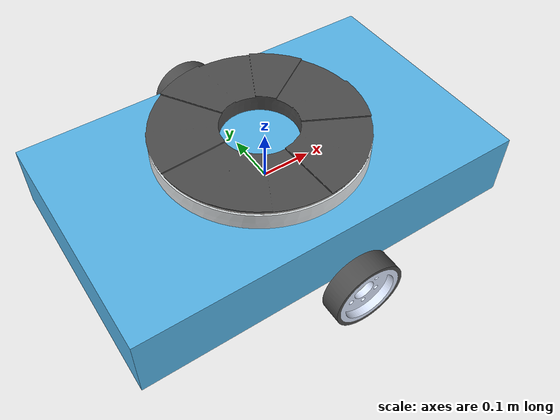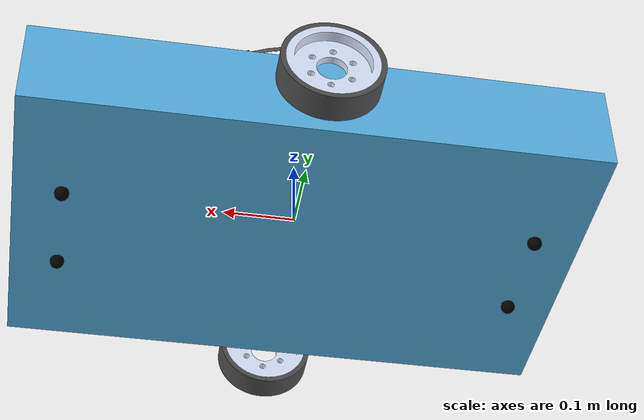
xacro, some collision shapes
<?xml version="1.0" ?>
<robot name="rocket" xmlns:xacro="http://ros.org/wiki/xacro">

  <!--=========================== CONTROL ===========================-->
  <xacro:include filename="rocket_control.xacro" />

  <!--=========================== PLUGINS ===========================-->

  <!-- ****************** ROBOT CONSTANTS *******************************  -->
  <!-- Define the size of the robot's main base_link in meters -->
  <xacro:property name="base_width" value="0.47"/>
  <xacro:property name="base_length" value="0.77"/>
  <xacro:property name="base_height" value="0.13"/>

  <!-- Define the shape of the robot's two wheels in meters -->
  <xacro:property name="wheel_radius" value="0.0675"/>
  <xacro:property name="wheel_width" value="0.04"/>

  <!-- Define the shape of the robot's tray in meters -->
  <xacro:property name="tray_radius" value="0.2"/>
  <xacro:property name="tray_width" value="0.041"/>

  <!-- Define the shape of the robot's four caster wheels in meters -->
  <xacro:property name="caster_wheel_radius" value="0.01"/>

  <!-- Colors -->
  <material name="black">
      <color rgba="0.0 0.0 0.0 1.0"/>
  </material>

  <!-- ********************** ROBOT BASE *********************************  -->
  <link name="base_footprint">
    </link>

    <gazebo reference="base_link">
      <mu1 value="0.3" />
      <mu2 value="0.3" />
      <kp value="1000000.0" />
      <kd value="100" />
      <fdir1 value="0 0 0" />
    </gazebo>

    <joint name="base_joint" type="fixed">
      <parent link="base_link"/>
      <child link="base_footprint" />
      <origin xyz="0.0 0.0 -0.0793" rpy="0 0 3.14"/>
    </joint>

    <link name="base_link">
      <visual>
        <origin xyz="0  0  0" rpy="0 0 0"/>
        <geometry>
          <mesh filename="file:///$(find rocket)/meshes/EST_estrutura_m3.dae" />
        </geometry>
      </visual>

      <collision>
          <origin rpy="0  0  0" xyz="0  0  0.01" />
          <geometry>
              <box size="${base_length} ${base_width} ${base_height}"/>
          </geometry>
      </collision>

      <inertial>
          <origin xyz="0  0  0" rpy="0  1.57  0"/>
          <mass value="2.4"/>
          <inertia ixx="0.12196" ixy="0.0" ixz="0.0"
                iyy="0.04756" iyz="0.0"
                izz="0.16276" />
      </inertial>

    </link>

  <!-- *********************** DRIVE WHEELS ******************************  -->
    <gazebo reference="left_wheel">
      <mu1>1.0</mu1>
      <mu2>1.0</mu2>
      <kp>1000000.0</kp>
      <kd>100.0</kd>
    </gazebo>

    <link name="left_wheel">
      <visual name="left_wheel_visual">
        <origin xyz="0 0 0" rpy="0 0 0"/>
        <geometry>
            <mesh filename="file:///$(find rocket)/meshes/M_rodatrativa.dae" scale="1 1 1"/>
        </geometry>
      </visual>

      <collision name="left_wheel_collision">
        <origin xyz="0 0 0" rpy="0 1.57 0"/>
        <geometry>
          <cylinder length="${wheel_width}" radius="${wheel_radius}"/>
        </geometry>
      </collision>

      <inertial>
        <mass value="1" />
        <origin rpy="0 1.57 0" xyz="0 0 0" />
        <inertia ixx="0.0013" ixy="0.0" ixz="0.0"
                iyy="0.0013" iyz="0.0"
                izz="0.00245" />
      </inertial>

    </link>

    <joint name="joint_left_wheel" type="continuous">
            <parent link="base_link" />
            <child link="left_wheel" />
            <origin rpy="0 0 1.57" xyz=" 0 -0.296755 -0.0118" />
            <axis rpy="0 0 0" xyz="1 0 0"/>
    </joint>

    <gazebo reference="right_wheel">
      <mu1>1.0</mu1>
      <mu2>1.0</mu2>
      <kp>1000000.0</kp>
      <kd>100.0</kd>
    </gazebo>

    <link name="right_wheel">
      <visual name="right_wheel_visual">
        <origin xyz="0 0 0" rpy="0 0 0"/>
        <geometry>
            <mesh filename="file:///$(find rocket)/meshes/M_rodatrativa.dae" scale="1 1 1"/>
        </geometry>
      </visual>

      <collision name="right_wheel_collision">
        <origin xyz="0 0 0" rpy="0 1.57 0"/>
        <geometry>
          <cylinder length="${wheel_width}" radius="${wheel_radius}"/>
        </geometry>
      </collision>

      <inertial>
        <mass value="1" />
        <origin rpy="0 1.57 0" xyz="0 0 0" />
        <inertia ixx="0.0013" ixy="0.0" ixz="0.0"
                iyy="0.0013" iyz="0.0"
                izz="0.00245" />
      </inertial>

    </link>

    <joint name="joint_right_wheel" type="continuous">
            <parent link="base_link" />
            <child link="right_wheel" />
            <origin rpy="0 0 1.57" xyz="0 0.296395 -0.0118" />
            <axis rpy="0 0 0" xyz="1 0 0"/>
    </joint>

  <!-- *********************** TRAY ******************************  -->

  <link name="tray">
      <visual name="tray_visual">
        <origin xyz="0 0 0.0118" rpy="0 0 0"/>
        <geometry>
            <mesh filename="file:///$(find rocket)/meshes/ELV_conjuntocompleto.dae" scale="1 1 1"/>
        </geometry>
      </visual>

      <collision name="tray_collision">
        <origin xyz="0 -0.015047 0.1" rpy="0 0 0"/>
        <geometry>
          <cylinder length="${tray_width}" radius="${tray_radius}"/>
        </geometry>
      </collision>

      <inertial>
        <mass value="0.5" />
        <origin rpy="0 0 0" xyz="0 0 0" />
        <inertia ixx="0.0" ixy="0.0" ixz="0.0"
                iyy="0.0" iyz="0.0"
                izz="0.0" />
      </inertial>
  </link>

  <joint name="joint_tray" type="fixed">
            <parent link="base_link" />
            <child link="tray" />
            <origin rpy="0 0 0" xyz="0 0.015047 0" />
  </joint>

  <!-- *********************** CASTER WHEELS ******************************  -->

  <gazebo reference="back_left_caster_wheel">
      <selfCollide>true</selfCollide>
      <mu1 value="0.09" />
      <mu2 value="0.09" />
      <kp value="10000000.0" />
      <kd value="10000" />
  </gazebo>

  <link name="back_left_caster_wheel">
    <visual name="back_left_caster_wheel_visual">
      <origin xyz="0 0 0" rpy="0 0 0"/>
      <geometry>
        <sphere radius="${caster_wheel_radius}"/>
      </geometry>
      <material name="black"/>
    </visual>

    <collision name="back_left_caster_wheel_collision">
      <origin xyz="0 0 0" rpy="0 0 0"/>
      <geometry>
        <sphere radius="0.01"/>
      </geometry>
    </collision>

    <inertial>
      <origin xyz="0 0 0" />
      <mass value="0.005" />
      <inertia ixx="0.001" ixy="0.0" ixz="0.0"
               iyy="0.001" iyz="0.0"
               izz="0.001" />
    </inertial>
  </link>

  <joint name="joint_back_left_caster_wheel" type="fixed">
    <parent link="base_link"/>
    <child link="back_left_caster_wheel"/>
    <origin rpy="-1.57 0 0" xyz="0.32 0.07 -0.06"/>
  </joint>

  <gazebo reference="back_right_caster_wheel">
      <selfCollide>true</selfCollide>
      <mu1 value="0.09" />
      <mu2 value="0.09" />
      <kp value="10000000.0" />
      <kd value="10000" />
  </gazebo>

  <link name="back_right_caster_wheel">
    <visual name="back_right_caster_wheel_visual">
      <origin xyz="0 0 0" rpy="0 0 0"/>
      <geometry>
        <sphere radius="${caster_wheel_radius}"/>
      </geometry>
      <material name="black"/>
    </visual>

    <collision name="back_right_caster_wheel_collision">
      <origin xyz="0 0 0" rpy="0 0 0"/>
      <geometry>
        <sphere radius="0.01"/>
      </geometry>
    </collision>

    <inertial>
      <origin xyz="0 0 0" />
      <mass value="0.005" />
      <inertia ixx="0.001" ixy="0.0" ixz="0.0"
               iyy="0.001" iyz="0.0"
               izz="0.001" />
    </inertial>
  </link>

  <joint name="joint_back_right_caster_wheel" type="fixed">
    <parent link="base_link"/>
    <child link="back_right_caster_wheel"/>
    <origin rpy="-1.57 0 0" xyz="0.32 -0.07 -0.06"/>
  </joint>

  <gazebo reference="front_left_caster_wheel">
      <selfCollide>true</selfCollide>
      <mu1 value="0.09" />
      <mu2 value="0.09" />
      <kp value="10000000.0" />
      <kd value="10000" />
  </gazebo>

  <link name="front_left_caster_wheel">
    <visual name="front_left_caster_wheel_visual">
      <origin xyz="0 0 0" rpy="0 0 0"/>
      <geometry>
        <sphere radius="${caster_wheel_radius}"/>
      </geometry>
      <material name="black"/>
    </visual>

    <collision name="front_left_caster_wheel_collision">
      <origin xyz="0 0 0" rpy="0 0 0"/>
      <geometry>
        <sphere radius="0.01"/>
      </geometry>
    </collision>

    <inertial>
      <origin xyz="0 0 0" />
      <mass value="0.005" />
      <inertia ixx="0.001" ixy="0.0" ixz="0.0"
               iyy="0.001" iyz="0.0"
               izz="0.001" />
        </inertial>
  </link>

  <joint name="joint_front_left_caster_wheel" type="fixed">
    <parent link="base_link"/>
    <child link="front_left_caster_wheel"/>
    <origin rpy="-1.57 0 0" xyz="-0.32 0.07 -0.06"/>
  </joint>

  <gazebo reference="front_right_caster_wheel">
      <selfCollide>true</selfCollide>
      <mu1 value="0.09" />
      <mu2 value="0.09" />
      <kp value="10000000.0" />
      <kd value="10000" />
  </gazebo>

  <link name="front_right_caster_wheel">
    <visual name="front_right_caster_wheel_visual">
      <origin xyz="0 0 0" rpy="0 0 0"/>
      <geometry>
        <sphere radius="${caster_wheel_radius}"/>
      </geometry>
      <material name="black"/>
    </visual>

    <collision name="front_right_caster_wheel_collision">
      <origin xyz="0 0 0" rpy="0 0 0"/>
      <geometry>
        <sphere radius="0.01"/>
      </geometry>
    </collision>

    <inertial>
      <origin xyz="0 0 0" />
      <mass value="0.005" />
      <inertia ixx="0.001" ixy="0.0" ixz="0.0"
               iyy="0.001" iyz="0.0"
               izz="0.001" />
    </inertial>
  </link>

  <joint name="joint_front_right_caster_wheel" type="fixed">
    <parent link="base_link"/>
    <child link="front_right_caster_wheel"/>
    <origin rpy="-1.57 0 0" xyz="-0.32 -0.07 -0.06"/>
  </joint>

</robot>
